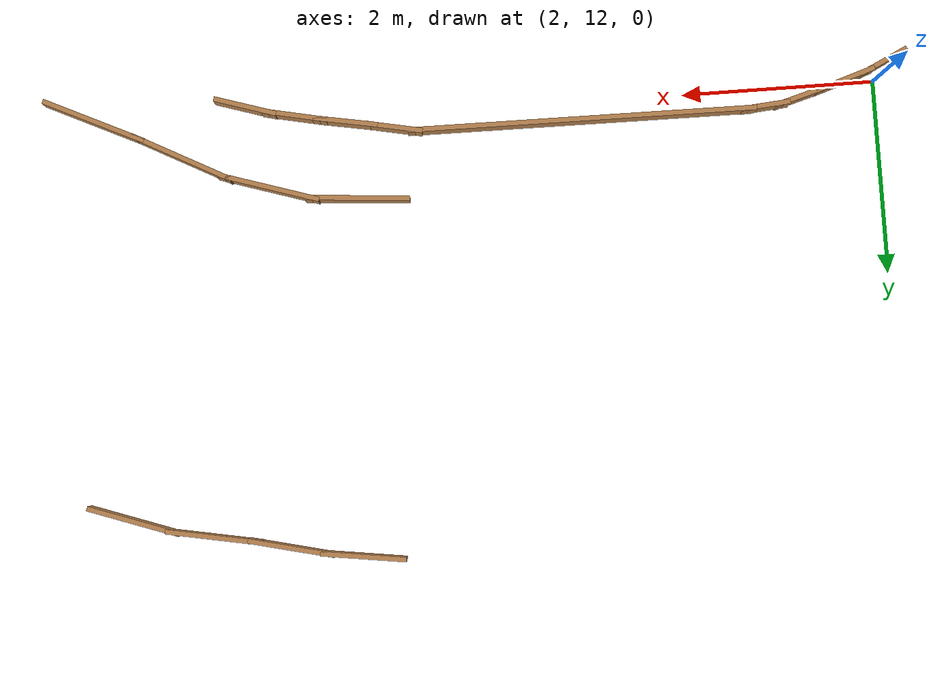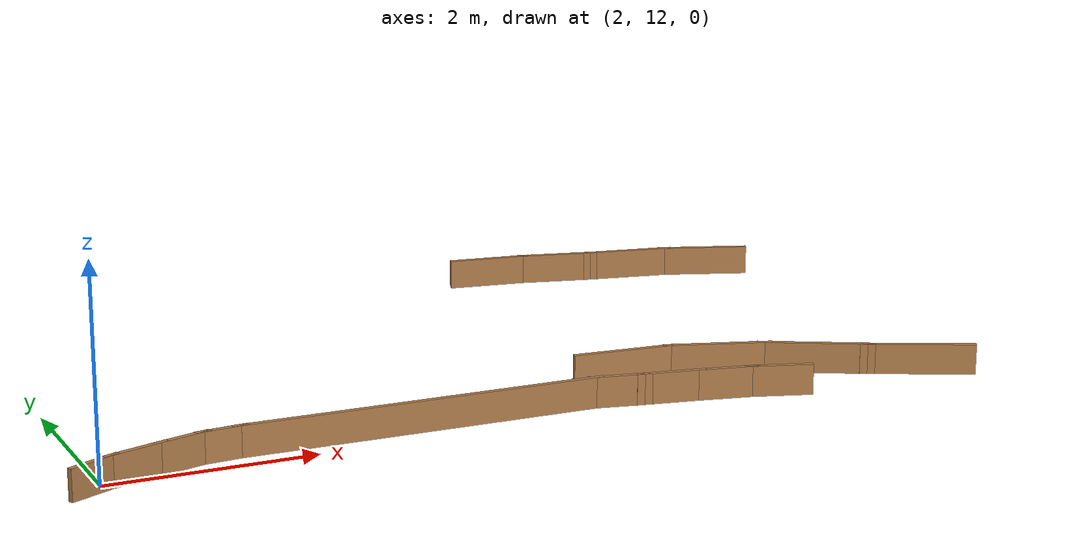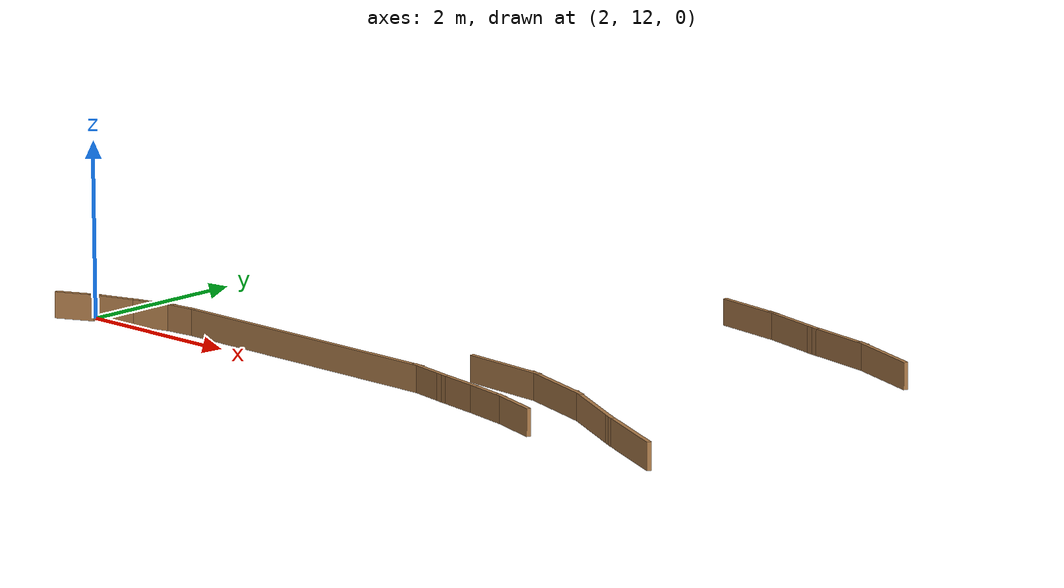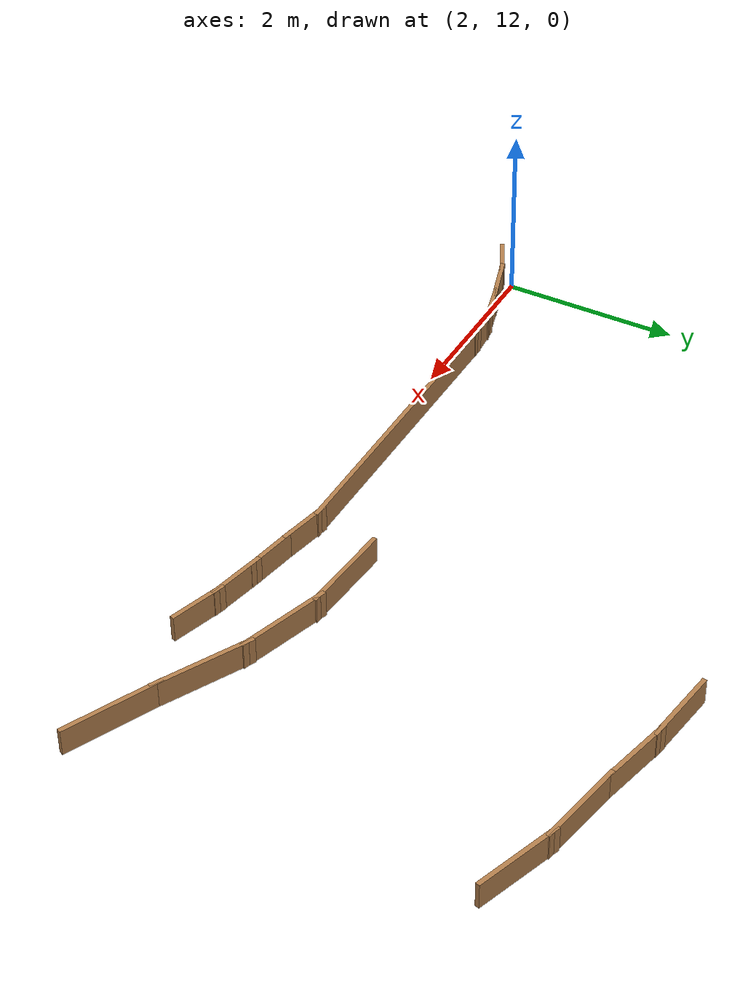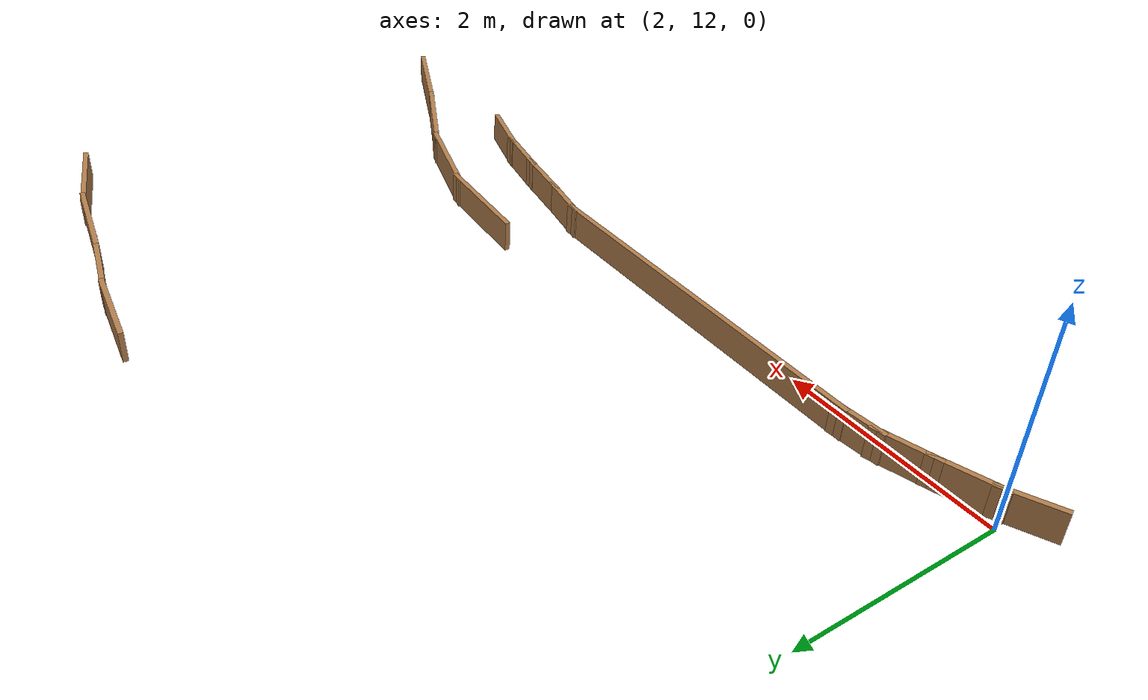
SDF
<sdf version="1.6">
 <model name="rover_racetrack">
  <pose>3.369 -0.8264 0 0 -0 0</pose>
  <link name="Wall_263">
   <collision name="Wall_263_Collision">
    <geometry><box><size>1.0787 0.05 0.3</size></box></geometry>
    <pose>0 0 0.15 0 -0 0</pose>
   </collision>
   <visual name="Wall_263_Visual">
    <pose>0 0 0.15 0 -0 0</pose>
    <geometry><box><size>1.0787 0.05 0.3</size></box></geometry>
    <material>
     <script><uri>file://media/materials/scripts/gazebo.material</uri><name>Gazebo/Wood</name></script>
     <ambient>0.435294 0.796078 0.67451 1</ambient>
    </material>
   </visual>
   <pose>4.07428 13.6855 0 0 0 -0.074977</pose>
  </link>
  <link name="Wall_264">
   <collision name="Wall_264_Collision">
    <geometry><box><size>1.07405 0.05 0.3</size></box></geometry>
    <pose>0 0 0.15 0 -0 0</pose>
   </collision>
   <visual name="Wall_264_Visual">
    <pose>0 0 0.15 0 -0 0</pose>
    <geometry><box><size>1.07405 0.05 0.3</size></box></geometry>
    <material>
     <script><uri>file://media/materials/scripts/gazebo.material</uri><name>Gazebo/Wood</name></script>
     <ambient>0.435294 0.796078 0.67451 1</ambient>
    </material>
   </visual>
   <pose>4.9779 13.5116 0 0 0 -0.305879</pose>
  </link>
  <link name="Wall_265">
   <collision name="Wall_265_Collision">
    <geometry><box><size>1.14575 0.05 0.3</size></box></geometry>
    <pose>0 0 0.15 0 -0 0</pose>
   </collision>
   <visual name="Wall_265_Visual">
    <pose>0 0 0.15 0 -0 0</pose>
    <geometry><box><size>1.14575 0.05 0.3</size></box></geometry>
    <material>
     <script><uri>file://media/materials/scripts/gazebo.material</uri><name>Gazebo/Wood</name></script>
     <ambient>0.435294 0.796078 0.67451 1</ambient>
    </material>
   </visual>
   <pose>5.85906 13.1406 0 0 0 -0.484478</pose>
  </link>
  <link name="Wall_266">
   <collision name="Wall_266_Collision">
    <geometry><box><size>1.12502 0.05 0.3</size></box></geometry>
    <pose>0 0 0.15 0 -0 0</pose>
   </collision>
   <visual name="Wall_266_Visual">
    <pose>0 0 0.15 0 -0 0</pose>
    <geometry><box><size>1.12502 0.05 0.3</size></box></geometry>
    <material>
     <script><uri>file://media/materials/scripts/gazebo.material</uri><name>Gazebo/Wood</name></script>
     <ambient>0.435294 0.796078 0.67451 1</ambient>
    </material>
   </visual>
   <pose>6.74022 12.7 0 0 0 -0.442374</pose>
  </link>
  <link name="Wall_401">
   <collision name="Wall_401_Collision">
    <geometry><box><size>0.661164 0.05 0.3</size></box></geometry>
    <pose>0 0 0.15 0 -0 0</pose>
   </collision>
   <visual name="Wall_401_Visual">
    <pose>0 0 0.15 0 -0 0</pose>
    <geometry><box><size>0.661164 0.05 0.3</size></box></geometry>
    <material>
     <script><uri>file://media/materials/scripts/gazebo.material</uri><name>Gazebo/Wood</name></script>
     <ambient>0.435294 0.796078 0.67451 1</ambient>
    </material>
   </visual>
   <pose>5.16753 12.6567 0 0 -0 2.83871</pose>
  </link>
  <link name="Wall_402">
   <collision name="Wall_402_Collision">
    <geometry><box><size>0.679262 0.05 0.3</size></box></geometry>
    <pose>0 0 0.15 0 -0 0</pose>
   </collision>
   <visual name="Wall_402_Visual">
    <pose>0 0 0.15 0 -0 0</pose>
    <geometry><box><size>0.679262 0.05 0.3</size></box></geometry>
    <material>
     <script><uri>file://media/materials/scripts/gazebo.material</uri><name>Gazebo/Wood</name></script>
     <ambient>0.435294 0.796078 0.67451 1</ambient>
    </material>
   </visual>
   <pose>4.66439 12.7863 0 0 -0 2.93855</pose>
  </link>
  <link name="Wall_403">
   <collision name="Wall_403_Collision">
    <geometry><box><size>0.6764 0.05 0.3</size></box></geometry>
    <pose>0 0 0.15 0 -0 0</pose>
   </collision>
   <visual name="Wall_403_Visual">
    <pose>0 0 0.15 0 -0 0</pose>
    <geometry><box><size>0.6764 0.05 0.3</size></box></geometry>
    <material>
     <script><uri>file://media/materials/scripts/gazebo.material</uri><name>Gazebo/Wood</name></script>
     <ambient>0.435294 0.796078 0.67451 1</ambient>
    </material>
   </visual>
   <pose>4.146 12.8854 0 0 -0 2.96692</pose>
  </link>
  <link name="Wall_404">
   <collision name="Wall_404_Collision">
    <geometry><box><size>0.616461 0.05 0.3</size></box></geometry>
    <pose>0 0 0.15 0 -0 0</pose>
   </collision>
   <visual name="Wall_404_Visual">
    <pose>0 0 0.15 0 -0 0</pose>
    <geometry><box><size>0.616461 0.05 0.3</size></box></geometry>
    <material>
     <script><uri>file://media/materials/scripts/gazebo.material</uri><name>Gazebo/Wood</name></script>
     <ambient>0.435294 0.796078 0.67451 1</ambient>
    </material>
   </visual>
   <pose>3.65811 12.9769 0 0 -0 2.9442</pose>
  </link>
  <link name="Wall_405">
   <collision name="Wall_405_Collision">
    <geometry><box><size>3.61105 0.05 0.3</size></box></geometry>
    <pose>0 0 0.15 0 -0 0</pose>
   </collision>
   <visual name="Wall_405_Visual">
    <pose>0 0 0.15 0 -0 0</pose>
    <geometry><box><size>3.61105 0.05 0.3</size></box></geometry>
    <material>
     <script><uri>file://media/materials/scripts/gazebo.material</uri><name>Gazebo/Wood</name></script>
     <ambient>0.435294 0.796078 0.67451 1</ambient>
    </material>
   </visual>
   <pose>1.6989 13.0303 0 0 -0 3.13719</pose>
  </link>
  <link name="Wall_407">
   <collision name="Wall_407_Collision">
    <geometry><box><size>0.501999 0.05 0.3</size></box></geometry>
    <pose>0 0 0.15 0 -0 0</pose>
   </collision>
   <visual name="Wall_407_Visual">
    <pose>0 0 0.15 0 -0 0</pose>
    <geometry><box><size>0.501999 0.05 0.3</size></box></geometry>
    <material>
     <script><uri>file://media/materials/scripts/gazebo.material</uri><name>Gazebo/Wood</name></script>
     <ambient>0.435294 0.796078 0.67451 1</ambient>
    </material>
   </visual>
   <pose>-0.206946 13.0227 0 0 0 -3.05485</pose>
  </link>
  <link name="Wall_408">
   <collision name="Wall_408_Collision">
    <geometry><box><size>0.593992 0.05 0.3</size></box></geometry>
    <pose>0 0 0.15 0 -0 0</pose>
   </collision>
   <visual name="Wall_408_Visual">
    <pose>0 0 0.15 0 -0 0</pose>
    <geometry><box><size>0.593992 0.05 0.3</size></box></geometry>
    <material>
     <script><uri>file://media/materials/scripts/gazebo.material</uri><name>Gazebo/Wood</name></script>
     <ambient>0.435294 0.796078 0.67451 1</ambient>
    </material>
   </visual>
   <pose>-0.595738 12.9464 0 0 0 -2.86329</pose>
  </link>
  <link name="Wall_409">
   <collision name="Wall_409_Collision">
    <geometry><box><size>0.646632 0.05 0.3</size></box></geometry>
    <pose>0 0 0.15 0 -0 0</pose>
   </collision>
   <visual name="Wall_409_Visual">
    <pose>0 0 0.15 0 -0 0</pose>
    <geometry><box><size>0.646632 0.05 0.3</size></box></geometry>
    <material>
     <script><uri>file://media/materials/scripts/gazebo.material</uri><name>Gazebo/Wood</name></script>
     <ambient>0.435294 0.796078 0.67451 1</ambient>
    </material>
   </visual>
   <pose>-1.04552 12.8092 0 0 0 -2.82955</pose>
  </link>
  <link name="Wall_410">
   <collision name="Wall_410_Collision">
    <geometry><box><size>0.538717 0.05 0.3</size></box></geometry>
    <pose>0 0 0.15 0 -0 0</pose>
   </collision>
   <visual name="Wall_410_Visual">
    <pose>0 0 0.15 0 -0 0</pose>
    <geometry><box><size>0.538717 0.05 0.3</size></box></geometry>
    <material>
     <script><uri>file://media/materials/scripts/gazebo.material</uri><name>Gazebo/Wood</name></script>
     <ambient>0.435294 0.796078 0.67451 1</ambient>
    </material>
   </visual>
   <pose>-1.45718 12.6491 0 0 0 -2.69549</pose>
  </link>
  <link name="Wall_45">
   <collision name="Wall_45_Collision">
    <geometry><box><size>0.885932 0.05 0.3</size></box></geometry>
    <pose>0 0 0.15 0 -0 0</pose>
   </collision>
   <visual name="Wall_45_Visual">
    <pose>0 0 0.15 0 -0 0</pose>
    <geometry><box><size>0.885932 0.05 0.3</size></box></geometry>
    <material>
     <script><uri>file://media/materials/scripts/gazebo.material</uri><name>Gazebo/Wood</name></script>
     <ambient>0.435294 0.796078 0.67451 1</ambient>
    </material>
   </visual>
   <pose>4.25936 17.3609 0 0 0 -0.139588</pose>
  </link>
  <link name="Wall_46">
   <collision name="Wall_46_Collision">
    <geometry><box><size>0.90273 0.05 0.3</size></box></geometry>
    <pose>0 0 0.15 0 -0 0</pose>
   </collision>
   <visual name="Wall_46_Visual">
    <pose>0 0 0.15 0 -0 0</pose>
    <geometry><box><size>0.90273 0.05 0.3</size></box></geometry>
    <material>
     <script><uri>file://media/materials/scripts/gazebo.material</uri><name>Gazebo/Wood</name></script>
     <ambient>0.435294 0.796078 0.67451 1</ambient>
    </material>
   </visual>
   <pose>4.98987 17.2226 0 0 0 -0.233743</pose>
  </link>
  <link name="Wall_47">
   <collision name="Wall_47_Collision">
    <geometry><box><size>1.00145 0.05 0.3</size></box></geometry>
    <pose>0 0 0.15 0 -0 0</pose>
   </collision>
   <visual name="Wall_47_Visual">
    <pose>0 0 0.15 0 -0 0</pose>
    <geometry><box><size>1.00145 0.05 0.3</size></box></geometry>
    <material>
     <script><uri>file://media/materials/scripts/gazebo.material</uri><name>Gazebo/Wood</name></script>
     <ambient>0.435294 0.796078 0.67451 1</ambient>
    </material>
   </visual>
   <pose>5.77444 17.0569 0 0 0 -0.185348</pose>
  </link>
  <link name="Wall_48">
   <collision name="Wall_48_Collision">
    <geometry><box><size>0.982681 0.05 0.3</size></box></geometry>
    <pose>0 0 0.15 0 -0 0</pose>
   </collision>
   <visual name="Wall_48_Visual">
    <pose>0 0 0.15 0 -0 0</pose>
    <geometry><box><size>0.982681 0.05 0.3</size></box></geometry>
    <material>
     <script><uri>file://media/materials/scripts/gazebo.material</uri><name>Gazebo/Wood</name></script>
     <ambient>0.435294 0.796078 0.67451 1</ambient>
    </material>
   </visual>
   <pose>6.58515 16.839 0 0 0 -0.341615</pose>
  </link>
  <static>1</static>
 </model>
</sdf>
